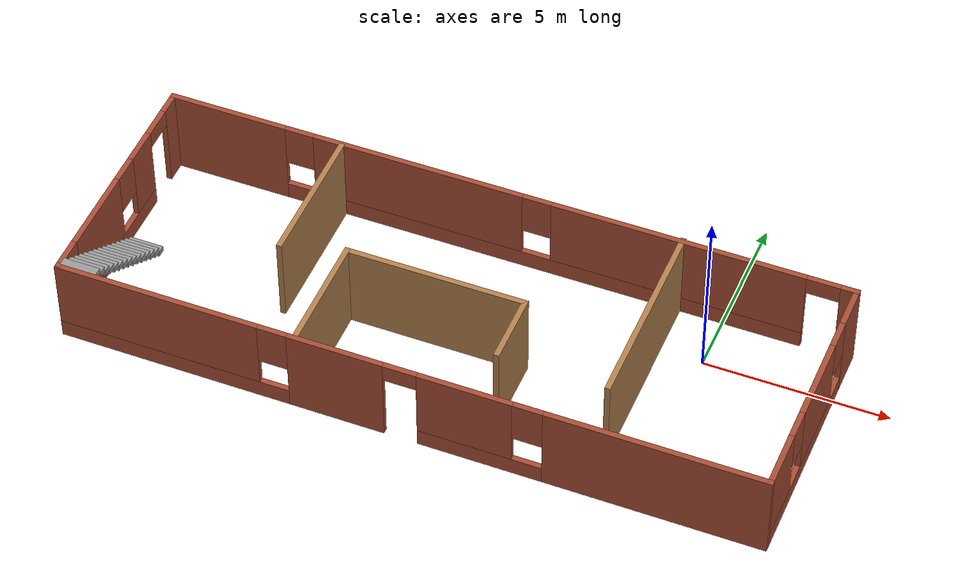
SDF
<?xml version='1.0'?>
<sdf version='1.7'>
  <model name='custome_world1.world'>
    <pose>-6.06213 -1.76669 0 0 -0 0</pose>
    <link name='Stairs_0'>
      <visual name='Stairs_0_Visual_0'>
        <pose>-8.94683 0.081488 0.083333 0 -0 0</pose>
        <geometry>
          <box>
            <size>1 0.233333 0.166667</size>
          </box>
        </geometry>
        <material>
          <script>
            <uri>file://media/materials/scripts/gazebo.material</uri>
            <name>Gazebo/Grey</name>
          </script>
          <ambient>1 1 1 1</ambient>
        </material>
        <meta>
          <layer>0</layer>
        </meta>
      </visual>
      <collision name='Stairs_0_Collision_0'>
        <geometry>
          <box>
            <size>1 0.233333 0.166667</size>
          </box>
        </geometry>
        <pose>-8.94683 0.081488 0.083333 0 -0 0</pose>
      </collision>
      <visual name='Stairs_0_Visual_1'>
        <pose>-8.94683 -0.151845 0.25 0 -0 0</pose>
        <geometry>
          <box>
            <size>1 0.233333 0.166667</size>
          </box>
        </geometry>
        <material>
          <script>
            <uri>file://media/materials/scripts/gazebo.material</uri>
            <name>Gazebo/Grey</name>
          </script>
          <ambient>1 1 1 1</ambient>
        </material>
        <meta>
          <layer>0</layer>
        </meta>
      </visual>
      <collision name='Stairs_0_Collision_1'>
        <geometry>
          <box>
            <size>1 0.233333 0.166667</size>
          </box>
        </geometry>
        <pose>-8.94683 -0.151845 0.25 0 -0 0</pose>
      </collision>
      <visual name='Stairs_0_Visual_2'>
        <pose>-8.94683 -0.385178 0.416667 0 -0 0</pose>
        <geometry>
          <box>
            <size>1 0.233333 0.166667</size>
          </box>
        </geometry>
        <material>
          <script>
            <uri>file://media/materials/scripts/gazebo.material</uri>
            <name>Gazebo/Grey</name>
          </script>
          <ambient>1 1 1 1</ambient>
        </material>
        <meta>
          <layer>0</layer>
        </meta>
      </visual>
      <collision name='Stairs_0_Collision_2'>
        <geometry>
          <box>
            <size>1 0.233333 0.166667</size>
          </box>
        </geometry>
        <pose>-8.94683 -0.385178 0.416667 0 -0 0</pose>
      </collision>
      <visual name='Stairs_0_Visual_3'>
        <pose>-8.94683 -0.618511 0.583333 0 -0 0</pose>
        <geometry>
          <box>
            <size>1 0.233333 0.166667</size>
          </box>
        </geometry>
        <material>
          <script>
            <uri>file://media/materials/scripts/gazebo.material</uri>
            <name>Gazebo/Grey</name>
          </script>
          <ambient>1 1 1 1</ambient>
        </material>
        <meta>
          <layer>0</layer>
        </meta>
      </visual>
      <collision name='Stairs_0_Collision_3'>
        <geometry>
          <box>
            <size>1 0.233333 0.166667</size>
          </box>
        </geometry>
        <pose>-8.94683 -0.618511 0.583333 0 -0 0</pose>
      </collision>
      <visual name='Stairs_0_Visual_4'>
        <pose>-8.94683 -0.851845 0.75 0 -0 0</pose>
        <geometry>
          <box>
            <size>1 0.233333 0.166667</size>
          </box>
        </geometry>
        <material>
          <script>
            <uri>file://media/materials/scripts/gazebo.material</uri>
            <name>Gazebo/Grey</name>
          </script>
          <ambient>1 1 1 1</ambient>
        </material>
        <meta>
          <layer>0</layer>
        </meta>
      </visual>
      <collision name='Stairs_0_Collision_4'>
        <geometry>
          <box>
            <size>1 0.233333 0.166667</size>
          </box>
        </geometry>
        <pose>-8.94683 -0.851845 0.75 0 -0 0</pose>
      </collision>
      <visual name='Stairs_0_Visual_5'>
        <pose>-8.94683 -1.08518 0.916667 0 -0 0</pose>
        <geometry>
          <box>
            <size>1 0.233333 0.166667</size>
          </box>
        </geometry>
        <material>
          <script>
            <uri>file://media/materials/scripts/gazebo.material</uri>
            <name>Gazebo/Grey</name>
          </script>
          <ambient>1 1 1 1</ambient>
        </material>
        <meta>
          <layer>0</layer>
        </meta>
      </visual>
      <collision name='Stairs_0_Collision_5'>
        <geometry>
          <box>
            <size>1 0.233333 0.166667</size>
          </box>
        </geometry>
        <pose>-8.94683 -1.08518 0.916667 0 -0 0</pose>
      </collision>
      <visual name='Stairs_0_Visual_6'>
        <pose>-8.94683 -1.31851 1.08333 0 -0 0</pose>
        <geometry>
          <box>
            <size>1 0.233333 0.166667</size>
          </box>
        </geometry>
        <material>
          <script>
            <uri>file://media/materials/scripts/gazebo.material</uri>
            <name>Gazebo/Grey</name>
          </script>
          <ambient>1 1 1 1</ambient>
        </material>
        <meta>
          <layer>0</layer>
        </meta>
      </visual>
      <collision name='Stairs_0_Collision_6'>
        <geometry>
          <box>
            <size>1 0.233333 0.166667</size>
          </box>
        </geometry>
        <pose>-8.94683 -1.31851 1.08333 0 -0 0</pose>
      </collision>
      <visual name='Stairs_0_Visual_7'>
        <pose>-8.94683 -1.55184 1.25 0 -0 0</pose>
        <geometry>
          <box>
            <size>1 0.233333 0.166667</size>
          </box>
        </geometry>
        <material>
          <script>
            <uri>file://media/materials/scripts/gazebo.material</uri>
            <name>Gazebo/Grey</name>
          </script>
          <ambient>1 1 1 1</ambient>
        </material>
        <meta>
          <layer>0</layer>
        </meta>
      </visual>
      <collision name='Stairs_0_Collision_7'>
        <geometry>
          <box>
            <size>1 0.233333 0.166667</size>
          </box>
        </geometry>
        <pose>-8.94683 -1.55184 1.25 0 -0 0</pose>
      </collision>
      <visual name='Stairs_0_Visual_8'>
        <pose>-8.94683 -1.78518 1.41667 0 -0 0</pose>
        <geometry>
          <box>
            <size>1 0.233333 0.166667</size>
          </box>
        </geometry>
        <material>
          <script>
            <uri>file://media/materials/scripts/gazebo.material</uri>
            <name>Gazebo/Grey</name>
          </script>
          <ambient>1 1 1 1</ambient>
        </material>
        <meta>
          <layer>0</layer>
        </meta>
      </visual>
      <collision name='Stairs_0_Collision_8'>
        <geometry>
          <box>
            <size>1 0.233333 0.166667</size>
          </box>
        </geometry>
        <pose>-8.94683 -1.78518 1.41667 0 -0 0</pose>
      </collision>
      <visual name='Stairs_0_Visual_9'>
        <pose>-8.94683 -2.01851 1.58333 0 -0 0</pose>
        <geometry>
          <box>
            <size>1 0.233333 0.166667</size>
          </box>
        </geometry>
        <material>
          <script>
            <uri>file://media/materials/scripts/gazebo.material</uri>
            <name>Gazebo/Grey</name>
          </script>
          <ambient>1 1 1 1</ambient>
        </material>
        <meta>
          <layer>0</layer>
        </meta>
      </visual>
      <collision name='Stairs_0_Collision_9'>
        <geometry>
          <box>
            <size>1 0.233333 0.166667</size>
          </box>
        </geometry>
        <pose>-8.94683 -2.01851 1.58333 0 -0 0</pose>
      </collision>
      <visual name='Stairs_0_Visual_10'>
        <pose>-8.94683 -2.25184 1.75 0 -0 0</pose>
        <geometry>
          <box>
            <size>1 0.233333 0.166667</size>
          </box>
        </geometry>
        <material>
          <script>
            <uri>file://media/materials/scripts/gazebo.material</uri>
            <name>Gazebo/Grey</name>
          </script>
          <ambient>1 1 1 1</ambient>
        </material>
        <meta>
          <layer>0</layer>
        </meta>
      </visual>
      <collision name='Stairs_0_Collision_10'>
        <geometry>
          <box>
            <size>1 0.233333 0.166667</size>
          </box>
        </geometry>
        <pose>-8.94683 -2.25184 1.75 0 -0 0</pose>
      </collision>
      <visual name='Stairs_0_Visual_11'>
        <pose>-8.94683 -2.48518 1.91667 0 -0 0</pose>
        <geometry>
          <box>
            <size>1 0.233333 0.166667</size>
          </box>
        </geometry>
        <material>
          <script>
            <uri>file://media/materials/scripts/gazebo.material</uri>
            <name>Gazebo/Grey</name>
          </script>
          <ambient>1 1 1 1</ambient>
        </material>
        <meta>
          <layer>0</layer>
        </meta>
      </visual>
      <collision name='Stairs_0_Collision_11'>
        <geometry>
          <box>
            <size>1 0.233333 0.166667</size>
          </box>
        </geometry>
        <pose>-8.94683 -2.48518 1.91667 0 -0 0</pose>
      </collision>
      <visual name='Stairs_0_Visual_12'>
        <pose>-8.94683 -2.71851 2.08333 0 -0 0</pose>
        <geometry>
          <box>
            <size>1 0.233333 0.166667</size>
          </box>
        </geometry>
        <material>
          <script>
            <uri>file://media/materials/scripts/gazebo.material</uri>
            <name>Gazebo/Grey</name>
          </script>
          <ambient>1 1 1 1</ambient>
        </material>
        <meta>
          <layer>0</layer>
        </meta>
      </visual>
      <collision name='Stairs_0_Collision_12'>
        <geometry>
          <box>
            <size>1 0.233333 0.166667</size>
          </box>
        </geometry>
        <pose>-8.94683 -2.71851 2.08333 0 -0 0</pose>
      </collision>
      <visual name='Stairs_0_Visual_13'>
        <pose>-8.94683 -2.95185 2.25 0 -0 0</pose>
        <geometry>
          <box>
            <size>1 0.233333 0.166667</size>
          </box>
        </geometry>
        <material>
          <script>
            <uri>file://media/materials/scripts/gazebo.material</uri>
            <name>Gazebo/Grey</name>
          </script>
          <ambient>1 1 1 1</ambient>
        </material>
        <meta>
          <layer>0</layer>
        </meta>
      </visual>
      <collision name='Stairs_0_Collision_13'>
        <geometry>
          <box>
            <size>1 0.233333 0.166667</size>
          </box>
        </geometry>
        <pose>-8.94683 -2.95185 2.25 0 -0 0</pose>
      </collision>
      <visual name='Stairs_0_Visual_14'>
        <pose>-8.94683 -3.18518 2.41667 0 -0 0</pose>
        <geometry>
          <box>
            <size>1 0.233333 0.166667</size>
          </box>
        </geometry>
        <material>
          <script>
            <uri>file://media/materials/scripts/gazebo.material</uri>
            <name>Gazebo/Grey</name>
          </script>
          <ambient>1 1 1 1</ambient>
        </material>
        <meta>
          <layer>0</layer>
        </meta>
      </visual>
      <collision name='Stairs_0_Collision_14'>
        <geometry>
          <box>
            <size>1 0.233333 0.166667</size>
          </box>
        </geometry>
        <pose>-8.94683 -3.18518 2.41667 0 -0 0</pose>
      </collision>
    </link>
    <link name='Wall_10'>
      <pose>-0 -3.3736 0 0 -0 3.14154</pose>
      <visual name='Wall_10_Visual_0'>
        <pose>-6.60945 0 1.25 0 -0 0</pose>
        <geometry>
          <box>
            <size>5.87845 0.15 2.5</size>
          </box>
        </geometry>
        <material>
          <script>
            <uri>file://media/materials/scripts/gazebo.material</uri>
            <name>Gazebo/Bricks</name>
          </script>
          <ambient>1 0.764706 0.305882 1</ambient>
        </material>
        <meta>
          <layer>0</layer>
        </meta>
      </visual>
      <collision name='Wall_10_Collision_0'>
        <geometry>
          <box>
            <size>5.87845 0.15 2.5</size>
          </box>
        </geometry>
        <pose>-6.60945 0 1.25 0 -0 0</pose>
      </collision>
      <visual name='Wall_10_Visual_1'>
        <pose>1.85182 0 1.25 0 -0 0</pose>
        <geometry>
          <box>
            <size>2.59364 0.15 2.5</size>
          </box>
        </geometry>
        <material>
          <script>
            <uri>file://media/materials/scripts/gazebo.material</uri>
            <name>Gazebo/Bricks</name>
          </script>
          <ambient>1 0.764706 0.305882 1</ambient>
        </material>
        <meta>
          <layer>0</layer>
        </meta>
      </visual>
      <collision name='Wall_10_Collision_1'>
        <geometry>
          <box>
            <size>2.59364 0.15 2.5</size>
          </box>
        </geometry>
        <pose>1.85182 0 1.25 0 -0 0</pose>
      </collision>
      <visual name='Wall_10_Visual_2'>
        <pose>-2.00761 0 0.25 0 -0 0</pose>
        <geometry>
          <box>
            <size>3.32523 0.15 0.5</size>
          </box>
        </geometry>
        <material>
          <script>
            <uri>file://media/materials/scripts/gazebo.material</uri>
            <name>Gazebo/Bricks</name>
          </script>
          <ambient>1 0.764706 0.305882 1</ambient>
        </material>
        <meta>
          <layer>0</layer>
        </meta>
      </visual>
      <collision name='Wall_10_Collision_2'>
        <geometry>
          <box>
            <size>3.32523 0.15 0.5</size>
          </box>
        </geometry>
        <pose>-2.00761 0 0.25 0 -0 0</pose>
      </collision>
      <visual name='Wall_10_Visual_3'>
        <pose>6.34866 0 0.25 0 -0 0</pose>
        <geometry>
          <box>
            <size>6.40003 0.15 0.5</size>
          </box>
        </geometry>
        <material>
          <script>
            <uri>file://media/materials/scripts/gazebo.material</uri>
            <name>Gazebo/Bricks</name>
          </script>
          <ambient>1 0.764706 0.305882 1</ambient>
        </material>
        <meta>
          <layer>0</layer>
        </meta>
      </visual>
      <collision name='Wall_10_Collision_3'>
        <geometry>
          <box>
            <size>6.40003 0.15 0.5</size>
          </box>
        </geometry>
        <pose>6.34866 0 0.25 0 -0 0</pose>
      </collision>
      <visual name='Wall_10_Visual_4'>
        <pose>-1.60761 0 1.5 0 -0 0</pose>
        <geometry>
          <box>
            <size>2.52523 0.15 2</size>
          </box>
        </geometry>
        <material>
          <script>
            <uri>file://media/materials/scripts/gazebo.material</uri>
            <name>Gazebo/Bricks</name>
          </script>
          <ambient>1 0.764706 0.305882 1</ambient>
        </material>
        <meta>
          <layer>0</layer>
        </meta>
      </visual>
      <collision name='Wall_10_Collision_4'>
        <geometry>
          <box>
            <size>2.52523 0.15 2</size>
          </box>
        </geometry>
        <pose>-1.60761 0 1.5 0 -0 0</pose>
      </collision>
      <visual name='Wall_10_Visual_5'>
        <pose>-1.60761 0 1.5 0 -0 0</pose>
        <geometry>
          <box>
            <size>2.52523 0.15 2</size>
          </box>
        </geometry>
        <material>
          <script>
            <uri>file://media/materials/scripts/gazebo.material</uri>
            <name>Gazebo/Bricks</name>
          </script>
          <ambient>1 0.764706 0.305882 1</ambient>
        </material>
        <meta>
          <layer>0</layer>
        </meta>
      </visual>
      <collision name='Wall_10_Collision_5'>
        <geometry>
          <box>
            <size>2.52523 0.15 2</size>
          </box>
        </geometry>
        <pose>-1.60761 0 1.5 0 -0 0</pose>
      </collision>
      <visual name='Wall_10_Visual_6'>
        <pose>6.74866 0 1.5 0 -0 0</pose>
        <geometry>
          <box>
            <size>5.60003 0.15 2</size>
          </box>
        </geometry>
        <material>
          <script>
            <uri>file://media/materials/scripts/gazebo.material</uri>
            <name>Gazebo/Bricks</name>
          </script>
          <ambient>1 0.764706 0.305882 1</ambient>
        </material>
        <meta>
          <layer>0</layer>
        </meta>
      </visual>
      <collision name='Wall_10_Collision_6'>
        <geometry>
          <box>
            <size>5.60003 0.15 2</size>
          </box>
        </geometry>
        <pose>6.74866 0 1.5 0 -0 0</pose>
      </collision>
      <visual name='Wall_10_Visual_7'>
        <pose>-3.27022 0 1.9 0 -0 0</pose>
        <geometry>
          <box>
            <size>0.8 0.15 1.2</size>
          </box>
        </geometry>
        <material>
          <script>
            <uri>file://media/materials/scripts/gazebo.material</uri>
            <name>Gazebo/Bricks</name>
          </script>
          <ambient>1 0.764706 0.305882 1</ambient>
        </material>
        <meta>
          <layer>0</layer>
        </meta>
      </visual>
      <collision name='Wall_10_Collision_7'>
        <geometry>
          <box>
            <size>0.8 0.15 1.2</size>
          </box>
        </geometry>
        <pose>-3.27022 0 1.9 0 -0 0</pose>
      </collision>
      <visual name='Wall_10_Visual_8'>
        <pose>3.54864 0 1.9 0 -0 0</pose>
        <geometry>
          <box>
            <size>0.8 0.15 1.2</size>
          </box>
        </geometry>
        <material>
          <script>
            <uri>file://media/materials/scripts/gazebo.material</uri>
            <name>Gazebo/Bricks</name>
          </script>
          <ambient>1 0.764706 0.305882 1</ambient>
        </material>
        <meta>
          <layer>0</layer>
        </meta>
      </visual>
      <collision name='Wall_10_Collision_8'>
        <geometry>
          <box>
            <size>0.8 0.15 1.2</size>
          </box>
        </geometry>
        <pose>3.54864 0 1.9 0 -0 0</pose>
      </collision>
      <visual name='Wall_10_Visual_9'>
        <pose>0.105 0 2.25 0 -0 0</pose>
        <geometry>
          <box>
            <size>0.9 0.15 0.5</size>
          </box>
        </geometry>
        <material>
          <script>
            <uri>file://media/materials/scripts/gazebo.material</uri>
            <name>Gazebo/Bricks</name>
          </script>
          <ambient>1 0.764706 0.305882 1</ambient>
        </material>
        <meta>
          <layer>0</layer>
        </meta>
      </visual>
      <collision name='Wall_10_Collision_9'>
        <geometry>
          <box>
            <size>0.9 0.15 0.5</size>
          </box>
        </geometry>
        <pose>0.105 0 2.25 0 -0 0</pose>
      </collision>
      <visual name='Wall_10_Visual_10'>
        <pose>0.105 0 2.25 0 -0 0</pose>
        <geometry>
          <box>
            <size>0.9 0.15 0.5</size>
          </box>
        </geometry>
        <material>
          <script>
            <uri>file://media/materials/scripts/gazebo.material</uri>
            <name>Gazebo/Bricks</name>
          </script>
          <ambient>1 0.764706 0.305882 1</ambient>
        </material>
        <meta>
          <layer>0</layer>
        </meta>
      </visual>
      <collision name='Wall_10_Collision_10'>
        <geometry>
          <box>
            <size>0.9 0.15 0.5</size>
          </box>
        </geometry>
        <pose>0.105 0 2.25 0 -0 0</pose>
      </collision>
    </link>
    <link name='Wall_11'>
      <pose>-9.47368 -0.002713 0 0 -0 1.5708</pose>
      <visual name='Wall_11_Visual_0'>
        <pose>-3.33746 0 1.25 0 -0 0</pose>
        <geometry>
          <box>
            <size>0.145442 0.15 2.5</size>
          </box>
        </geometry>
        <material>
          <script>
            <uri>file://media/materials/scripts/gazebo.material</uri>
            <name>Gazebo/Bricks</name>
          </script>
          <ambient>1 0.764706 0.305882 1</ambient>
        </material>
        <meta>
          <layer>0</layer>
        </meta>
      </visual>
      <collision name='Wall_11_Collision_0'>
        <geometry>
          <box>
            <size>0.145442 0.15 2.5</size>
          </box>
        </geometry>
        <pose>-3.33746 0 1.25 0 -0 0</pose>
      </collision>
      <visual name='Wall_11_Visual_1'>
        <pose>3.05168 0 1.25 0 -0 0</pose>
        <geometry>
          <box>
            <size>0.717001 0.15 2.5</size>
          </box>
        </geometry>
        <material>
          <script>
            <uri>file://media/materials/scripts/gazebo.material</uri>
            <name>Gazebo/Bricks</name>
          </script>
          <ambient>1 0.764706 0.305882 1</ambient>
        </material>
        <meta>
          <layer>0</layer>
        </meta>
      </visual>
      <collision name='Wall_11_Collision_1'>
        <geometry>
          <box>
            <size>0.717001 0.15 2.5</size>
          </box>
        </geometry>
        <pose>3.05168 0 1.25 0 -0 0</pose>
      </collision>
      <visual name='Wall_11_Visual_2'>
        <pose>-0.735779 0 0.25 0 -0 0</pose>
        <geometry>
          <box>
            <size>5.05792 0.15 0.5</size>
          </box>
        </geometry>
        <material>
          <script>
            <uri>file://media/materials/scripts/gazebo.material</uri>
            <name>Gazebo/Bricks</name>
          </script>
          <ambient>1 0.764706 0.305882 1</ambient>
        </material>
        <meta>
          <layer>0</layer>
        </meta>
      </visual>
      <collision name='Wall_11_Collision_2'>
        <geometry>
          <box>
            <size>5.05792 0.15 0.5</size>
          </box>
        </geometry>
        <pose>-0.735779 0 0.25 0 -0 0</pose>
      </collision>
      <visual name='Wall_11_Visual_3'>
        <pose>-1.25171 0 1.5 0 -0 0</pose>
        <geometry>
          <box>
            <size>2.42605 0.15 2</size>
          </box>
        </geometry>
        <material>
          <script>
            <uri>file://media/materials/scripts/gazebo.material</uri>
            <name>Gazebo/Bricks</name>
          </script>
          <ambient>1 0.764706 0.305882 1</ambient>
        </material>
        <meta>
          <layer>0</layer>
        </meta>
      </visual>
      <collision name='Wall_11_Collision_3'>
        <geometry>
          <box>
            <size>2.42605 0.15 2</size>
          </box>
        </geometry>
        <pose>-1.25171 0 1.5 0 -0 0</pose>
      </collision>
      <visual name='Wall_11_Visual_4'>
        <pose>1.27725 0 1.5 0 -0 0</pose>
        <geometry>
          <box>
            <size>1.03186 0.15 2</size>
          </box>
        </geometry>
        <material>
          <script>
            <uri>file://media/materials/scripts/gazebo.material</uri>
            <name>Gazebo/Bricks</name>
          </script>
          <ambient>1 0.764706 0.305882 1</ambient>
        </material>
        <meta>
          <layer>0</layer>
        </meta>
      </visual>
      <collision name='Wall_11_Collision_4'>
        <geometry>
          <box>
            <size>1.03186 0.15 2</size>
          </box>
        </geometry>
        <pose>1.27725 0 1.5 0 -0 0</pose>
      </collision>
      <visual name='Wall_11_Visual_5'>
        <pose>-2.86474 0 1.9 0 -0 0</pose>
        <geometry>
          <box>
            <size>0.8 0.15 1.2</size>
          </box>
        </geometry>
        <material>
          <script>
            <uri>file://media/materials/scripts/gazebo.material</uri>
            <name>Gazebo/Bricks</name>
          </script>
          <ambient>1 0.764706 0.305882 1</ambient>
        </material>
        <meta>
          <layer>0</layer>
        </meta>
      </visual>
      <collision name='Wall_11_Collision_5'>
        <geometry>
          <box>
            <size>0.8 0.15 1.2</size>
          </box>
        </geometry>
        <pose>-2.86474 0 1.9 0 -0 0</pose>
      </collision>
      <visual name='Wall_11_Visual_6'>
        <pose>0.361315 0 1.9 0 -0 0</pose>
        <geometry>
          <box>
            <size>0.8 0.15 1.2</size>
          </box>
        </geometry>
        <material>
          <script>
            <uri>file://media/materials/scripts/gazebo.material</uri>
            <name>Gazebo/Bricks</name>
          </script>
          <ambient>1 0.764706 0.305882 1</ambient>
        </material>
        <meta>
          <layer>0</layer>
        </meta>
      </visual>
      <collision name='Wall_11_Collision_6'>
        <geometry>
          <box>
            <size>0.8 0.15 1.2</size>
          </box>
        </geometry>
        <pose>0.361315 0 1.9 0 -0 0</pose>
      </collision>
      <visual name='Wall_11_Visual_7'>
        <pose>2.24318 0 2.25 0 -0 0</pose>
        <geometry>
          <box>
            <size>0.9 0.15 0.5</size>
          </box>
        </geometry>
        <material>
          <script>
            <uri>file://media/materials/scripts/gazebo.material</uri>
            <name>Gazebo/Bricks</name>
          </script>
          <ambient>1 0.764706 0.305882 1</ambient>
        </material>
        <meta>
          <layer>0</layer>
        </meta>
      </visual>
      <collision name='Wall_11_Collision_7'>
        <geometry>
          <box>
            <size>0.9 0.15 0.5</size>
          </box>
        </geometry>
        <pose>2.24318 0 2.25 0 -0 0</pose>
      </collision>
    </link>
    <link name='Wall_12'>
      <pose>-0 3.33194 0 0 -0 -5.5e-05</pose>
      <visual name='Wall_12_Visual_0'>
        <pose>-7.87754 0 1.25 0 -0 0</pose>
        <geometry>
          <box>
            <size>3.34229 0.15 2.5</size>
          </box>
        </geometry>
        <material>
          <script>
            <uri>file://media/materials/scripts/gazebo.material</uri>
            <name>Gazebo/Bricks</name>
          </script>
          <ambient>1 0.764706 0.305882 1</ambient>
        </material>
        <meta>
          <layer>0</layer>
        </meta>
      </visual>
      <collision name='Wall_12_Collision_0'>
        <geometry>
          <box>
            <size>3.34229 0.15 2.5</size>
          </box>
        </geometry>
        <pose>-7.87754 0 1.25 0 -0 0</pose>
      </collision>
      <visual name='Wall_12_Visual_1'>
        <pose>9.30271 0 1.25 0 -0 0</pose>
        <geometry>
          <box>
            <size>0.491955 0.15 2.5</size>
          </box>
        </geometry>
        <material>
          <script>
            <uri>file://media/materials/scripts/gazebo.material</uri>
            <name>Gazebo/Bricks</name>
          </script>
          <ambient>1 0.764706 0.305882 1</ambient>
        </material>
        <meta>
          <layer>0</layer>
        </meta>
      </visual>
      <collision name='Wall_12_Collision_1'>
        <geometry>
          <box>
            <size>0.491955 0.15 2.5</size>
          </box>
        </geometry>
        <pose>9.30271 0 1.25 0 -0 0</pose>
      </collision>
      <visual name='Wall_12_Visual_2'>
        <pose>0.975168 0 0.25 0 -0 0</pose>
        <geometry>
          <box>
            <size>14.3631 0.15 0.5</size>
          </box>
        </geometry>
        <material>
          <script>
            <uri>file://media/materials/scripts/gazebo.material</uri>
            <name>Gazebo/Bricks</name>
          </script>
          <ambient>1 0.764706 0.305882 1</ambient>
        </material>
        <meta>
          <layer>0</layer>
        </meta>
      </visual>
      <collision name='Wall_12_Collision_2'>
        <geometry>
          <box>
            <size>14.3631 0.15 0.5</size>
          </box>
        </geometry>
        <pose>0.975168 0 0.25 0 -0 0</pose>
      </collision>
      <visual name='Wall_12_Visual_3'>
        <pose>-2.46538 0 1.5 0 -0 0</pose>
        <geometry>
          <box>
            <size>5.88204 0.15 2</size>
          </box>
        </geometry>
        <material>
          <script>
            <uri>file://media/materials/scripts/gazebo.material</uri>
            <name>Gazebo/Bricks</name>
          </script>
          <ambient>1 0.764706 0.305882 1</ambient>
        </material>
        <meta>
          <layer>0</layer>
        </meta>
      </visual>
      <collision name='Wall_12_Collision_3'>
        <geometry>
          <box>
            <size>5.88204 0.15 2</size>
          </box>
        </geometry>
        <pose>-2.46538 0 1.5 0 -0 0</pose>
      </collision>
      <visual name='Wall_12_Visual_4'>
        <pose>4.71619 0 1.5 0 -0 0</pose>
        <geometry>
          <box>
            <size>6.88109 0.15 2</size>
          </box>
        </geometry>
        <material>
          <script>
            <uri>file://media/materials/scripts/gazebo.material</uri>
            <name>Gazebo/Bricks</name>
          </script>
          <ambient>1 0.764706 0.305882 1</ambient>
        </material>
        <meta>
          <layer>0</layer>
        </meta>
      </visual>
      <collision name='Wall_12_Collision_4'>
        <geometry>
          <box>
            <size>6.88109 0.15 2</size>
          </box>
        </geometry>
        <pose>4.71619 0 1.5 0 -0 0</pose>
      </collision>
      <visual name='Wall_12_Visual_5'>
        <pose>-5.8064 0 1.9 0 -0 0</pose>
        <geometry>
          <box>
            <size>0.8 0.15 1.2</size>
          </box>
        </geometry>
        <material>
          <script>
            <uri>file://media/materials/scripts/gazebo.material</uri>
            <name>Gazebo/Bricks</name>
          </script>
          <ambient>1 0.764706 0.305882 1</ambient>
        </material>
        <meta>
          <layer>0</layer>
        </meta>
      </visual>
      <collision name='Wall_12_Collision_5'>
        <geometry>
          <box>
            <size>0.8 0.15 1.2</size>
          </box>
        </geometry>
        <pose>-5.8064 0 1.9 0 -0 0</pose>
      </collision>
      <visual name='Wall_12_Visual_6'>
        <pose>0.875639 0 1.9 0 -0 0</pose>
        <geometry>
          <box>
            <size>0.8 0.15 1.2</size>
          </box>
        </geometry>
        <material>
          <script>
            <uri>file://media/materials/scripts/gazebo.material</uri>
            <name>Gazebo/Bricks</name>
          </script>
          <ambient>1 0.764706 0.305882 1</ambient>
        </material>
        <meta>
          <layer>0</layer>
        </meta>
      </visual>
      <collision name='Wall_12_Collision_6'>
        <geometry>
          <box>
            <size>0.8 0.15 1.2</size>
          </box>
        </geometry>
        <pose>0.875639 0 1.9 0 -0 0</pose>
      </collision>
      <visual name='Wall_12_Visual_7'>
        <pose>8.60673 0 2.25 0 -0 0</pose>
        <geometry>
          <box>
            <size>0.9 0.15 0.5</size>
          </box>
        </geometry>
        <material>
          <script>
            <uri>file://media/materials/scripts/gazebo.material</uri>
            <name>Gazebo/Bricks</name>
          </script>
          <ambient>1 0.764706 0.305882 1</ambient>
        </material>
        <meta>
          <layer>0</layer>
        </meta>
      </visual>
      <collision name='Wall_12_Collision_7'>
        <geometry>
          <box>
            <size>0.9 0.15 0.5</size>
          </box>
        </geometry>
        <pose>8.60673 0 2.25 0 -0 0</pose>
      </collision>
    </link>
    <link name='Wall_20'>
      <collision name='Wall_20_Collision'>
        <geometry>
          <box>
            <size>4 0.15 2.5</size>
          </box>
        </geometry>
        <pose>0 0 1.25 0 -0 0</pose>
      </collision>
      <visual name='Wall_20_Visual'>
        <pose>0 0 1.25 0 -0 0</pose>
        <geometry>
          <box>
            <size>4 0.15 2.5</size>
          </box>
        </geometry>
        <material>
          <script>
            <uri>file://media/materials/scripts/gazebo.material</uri>
            <name>Gazebo/Wood</name>
          </script>
          <ambient>0.996078 0.47451 0.0196078 1</ambient>
        </material>
        <meta>
          <layer>0</layer>
        </meta>
      </visual>
      <pose>-4.59769 1.34384 0 0 -0 -1.5708</pose>
    </link>
    <link name='Wall_23'>
      <collision name='Wall_23_Collision'>
        <geometry>
          <box>
            <size>3.25 0.15 2.5</size>
          </box>
        </geometry>
        <pose>0 0 1.25 0 -0 0</pose>
      </collision>
      <visual name='Wall_23_Visual'>
        <pose>0 0 1.25 0 -0 0</pose>
        <geometry>
          <box>
            <size>3.25 0.15 2.5</size>
          </box>
        </geometry>
        <material>
          <script>
            <uri>file://media/materials/scripts/gazebo.material</uri>
            <name>Gazebo/Wood</name>
          </script>
          <ambient>0.996078 0.47451 0.0196078 1</ambient>
        </material>
        <meta>
          <layer>0</layer>
        </meta>
      </visual>
      <pose>-2.94475 -1.68336 0 0 -0 1.5708</pose>
    </link>
    <link name='Wall_24'>
      <collision name='Wall_24_Collision'>
        <geometry>
          <box>
            <size>5 0.15 2.5</size>
          </box>
        </geometry>
        <pose>0 0 1.25 0 -0 0</pose>
      </collision>
      <visual name='Wall_24_Visual'>
        <pose>0 0 1.25 0 -0 0</pose>
        <geometry>
          <box>
            <size>5 0.15 2.5</size>
          </box>
        </geometry>
        <material>
          <script>
            <uri>file://media/materials/scripts/gazebo.material</uri>
            <name>Gazebo/Wood</name>
          </script>
          <ambient>0.996078 0.47451 0.0196078 1</ambient>
        </material>
        <meta>
          <layer>0</layer>
        </meta>
      </visual>
      <pose>-0.51975 -0.133363 0 0 -0 0</pose>
    </link>
    <link name='Wall_25'>
      <collision name='Wall_25_Collision'>
        <geometry>
          <box>
            <size>2 0.15 2.5</size>
          </box>
        </geometry>
        <pose>0 0 1.25 0 -0 0</pose>
      </collision>
      <visual name='Wall_25_Visual'>
        <pose>0 0 1.25 0 -0 0</pose>
        <geometry>
          <box>
            <size>2 0.15 2.5</size>
          </box>
        </geometry>
        <material>
          <script>
            <uri>file://media/materials/scripts/gazebo.material</uri>
            <name>Gazebo/Wood</name>
          </script>
          <ambient>0.996078 0.47451 0.0196078 1</ambient>
        </material>
        <meta>
          <layer>0</layer>
        </meta>
      </visual>
      <pose>1.90525 -1.05836 0 0 -0 -1.5708</pose>
    </link>
    <link name='Wall_28'>
      <collision name='Wall_28_Collision'>
        <geometry>
          <box>
            <size>5.5 0.15 2.5</size>
          </box>
        </geometry>
        <pose>0 0 1.25 0 -0 0</pose>
      </collision>
      <visual name='Wall_28_Visual'>
        <pose>0 0 1.25 0 -0 0</pose>
        <geometry>
          <box>
            <size>5.5 0.15 2.5</size>
          </box>
        </geometry>
        <material>
          <script>
            <uri>file://media/materials/scripts/gazebo.material</uri>
            <name>Gazebo/Wood</name>
          </script>
          <ambient>0.996078 0.47451 0.0196078 1</ambient>
        </material>
        <meta>
          <layer>0</layer>
        </meta>
      </visual>
      <pose>4.82517 0.699126 0 0 -0 -1.5708</pose>
    </link>
    <link name='Wall_6'>
      <pose>9.47368 -0.010377 0 0 -0 -1.5708</pose>
      <visual name='Wall_6_Visual_0'>
        <pose>-2.79309 0 1.25 0 -0 0</pose>
        <geometry>
          <box>
            <size>1.22095 0.15 2.5</size>
          </box>
        </geometry>
        <material>
          <script>
            <uri>file://media/materials/scripts/gazebo.material</uri>
            <name>Gazebo/Bricks</name>
          </script>
          <ambient>1 0.764706 0.305882 1</ambient>
        </material>
        <meta>
          <layer>0</layer>
        </meta>
      </visual>
      <collision name='Wall_6_Collision_0'>
        <geometry>
          <box>
            <size>1.22095 0.15 2.5</size>
          </box>
        </geometry>
        <pose>-2.79309 0 1.25 0 -0 0</pose>
      </collision>
      <visual name='Wall_6_Visual_1'>
        <pose>0.610477 0 0.25 0 -0 0</pose>
        <geometry>
          <box>
            <size>5.58618 0.15 0.5</size>
          </box>
        </geometry>
        <material>
          <script>
            <uri>file://media/materials/scripts/gazebo.material</uri>
            <name>Gazebo/Bricks</name>
          </script>
          <ambient>1 0.764706 0.305882 1</ambient>
        </material>
        <meta>
          <layer>0</layer>
        </meta>
      </visual>
      <collision name='Wall_6_Collision_1'>
        <geometry>
          <box>
            <size>5.58618 0.15 0.5</size>
          </box>
        </geometry>
        <pose>0.610477 0 0.25 0 -0 0</pose>
      </collision>
      <visual name='Wall_6_Visual_2'>
        <pose>-0.199616 0 1.5 0 -0 0</pose>
        <geometry>
          <box>
            <size>2.36599 0.15 2</size>
          </box>
        </geometry>
        <material>
          <script>
            <uri>file://media/materials/scripts/gazebo.material</uri>
            <name>Gazebo/Bricks</name>
          </script>
          <ambient>1 0.764706 0.305882 1</ambient>
        </material>
        <meta>
          <layer>0</layer>
        </meta>
      </visual>
      <collision name='Wall_6_Collision_2'>
        <geometry>
          <box>
            <size>2.36599 0.15 2</size>
          </box>
        </geometry>
        <pose>-0.199616 0 1.5 0 -0 0</pose>
      </collision>
      <visual name='Wall_6_Visual_3'>
        <pose>2.59347 0 1.5 0 -0 0</pose>
        <geometry>
          <box>
            <size>1.62018 0.15 2</size>
          </box>
        </geometry>
        <material>
          <script>
            <uri>file://media/materials/scripts/gazebo.material</uri>
            <name>Gazebo/Bricks</name>
          </script>
          <ambient>1 0.764706 0.305882 1</ambient>
        </material>
        <meta>
          <layer>0</layer>
        </meta>
      </visual>
      <collision name='Wall_6_Collision_3'>
        <geometry>
          <box>
            <size>1.62018 0.15 2</size>
          </box>
        </geometry>
        <pose>2.59347 0 1.5 0 -0 0</pose>
      </collision>
      <visual name='Wall_6_Visual_4'>
        <pose>-1.78261 0 1.9 0 -0 0</pose>
        <geometry>
          <box>
            <size>0.8 0.15 1.2</size>
          </box>
        </geometry>
        <material>
          <script>
            <uri>file://media/materials/scripts/gazebo.material</uri>
            <name>Gazebo/Bricks</name>
          </script>
          <ambient>1 0.764706 0.305882 1</ambient>
        </material>
        <meta>
          <layer>0</layer>
        </meta>
      </visual>
      <collision name='Wall_6_Collision_4'>
        <geometry>
          <box>
            <size>0.8 0.15 1.2</size>
          </box>
        </geometry>
        <pose>-1.78261 0 1.9 0 -0 0</pose>
      </collision>
      <visual name='Wall_6_Visual_5'>
        <pose>1.38338 0 1.9 0 -0 0</pose>
        <geometry>
          <box>
            <size>0.8 0.15 1.2</size>
          </box>
        </geometry>
        <material>
          <script>
            <uri>file://media/materials/scripts/gazebo.material</uri>
            <name>Gazebo/Bricks</name>
          </script>
          <ambient>1 0.764706 0.305882 1</ambient>
        </material>
        <meta>
          <layer>0</layer>
        </meta>
      </visual>
      <collision name='Wall_6_Collision_5'>
        <geometry>
          <box>
            <size>0.8 0.15 1.2</size>
          </box>
        </geometry>
        <pose>1.38338 0 1.9 0 -0 0</pose>
      </collision>
    </link>
    <static>1</static>
  </model>
</sdf>
